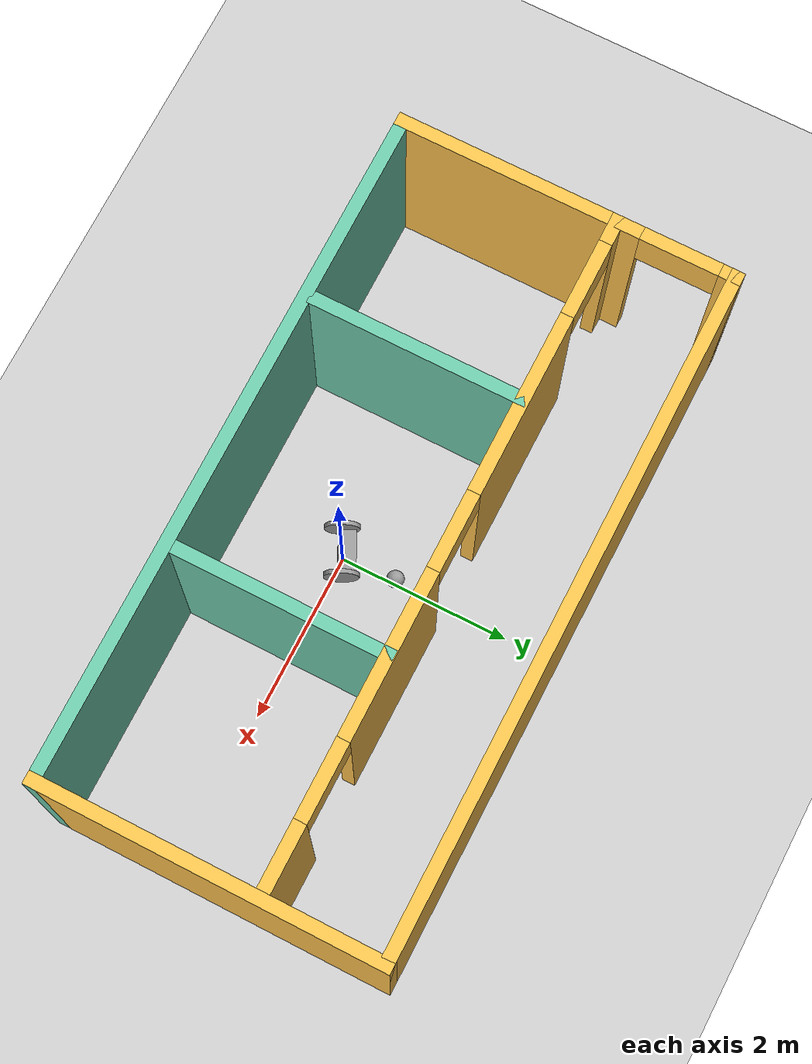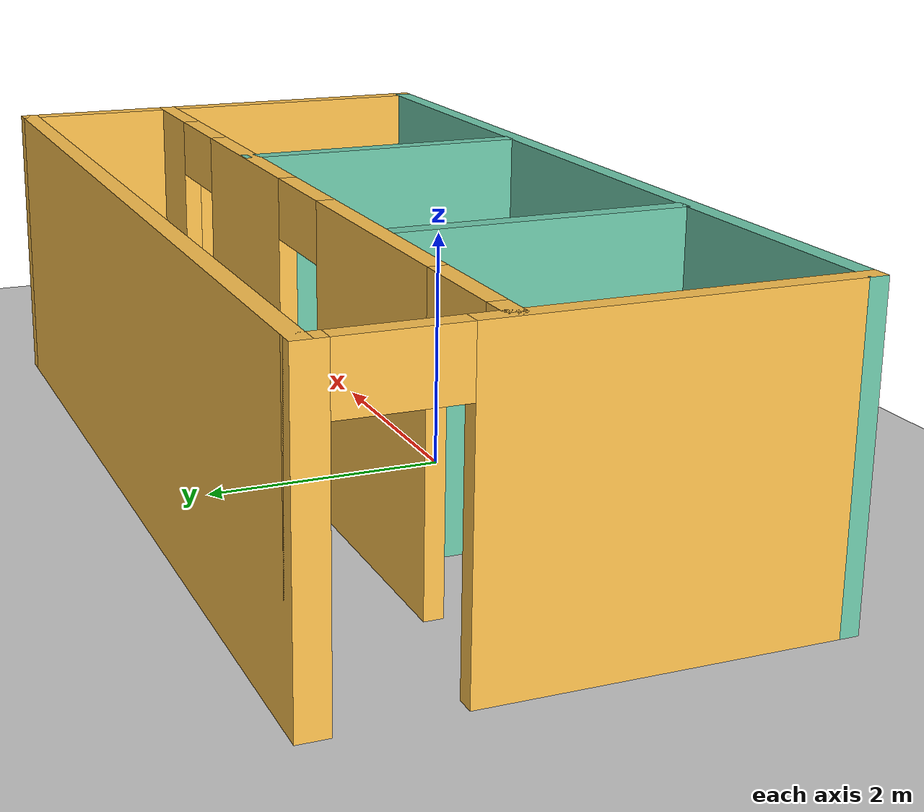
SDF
<sdf version="1.6">
 <world name="default">
  <light name="sun" type="directional">
   <pose>0 0 10 0 -0 0</pose>
   <diffuse>0.8 0.8 0.8 1</diffuse>
   <specular>0.2 0.2 0.2 1</specular>
   <attenuation>
    <range>1000</range>
    <constant>0.9</constant>
    <linear>0.01</linear>
    <quadratic>0.001</quadratic>
   </attenuation>
   <direction>-0.5 0.1 -0.9</direction>
  </light>
  <model name="ground_plane">
   <static>1</static>
   <link name="link">
    <collision name="collision">
     <geometry><plane><normal>0 0 1</normal><size>100 100</size></plane></geometry>
     <surface><friction><ode><mu>100</mu><mu2>50</mu2></ode></friction></surface>
    </collision>
    <visual name="visual">
     <cast_shadows>0</cast_shadows>
     <geometry><plane><normal>0 0 1</normal><size>100 100</size></plane></geometry>
     <material>
      <script><uri>file://media/materials/scripts/gazebo.material</uri><name>Gazebo/Grey</name></script>
     </material>
    </visual>
   </link>
  </model>
  <gravity>0 0 -9.8</gravity>
  <magnetic_field>6e-06 2.3e-05 -4.2e-05</magnetic_field>
  <atmosphere type="adiabatic"/>
  <physics name="default_physics" default="0" type="ode">
   <max_step_size>0.001</max_step_size>
   <real_time_factor>1</real_time_factor>
   <real_time_update_rate>1000</real_time_update_rate>
  </physics>
  <scene><ambient>0.4 0.4 0.4 1</ambient><background>0.7 0.7 0.7 1</background><shadows>1</shadows></scene>
  <spherical_coordinates>
   <surface_model>EARTH_WGS84</surface_model>
   <latitude_deg>0</latitude_deg>
   <longitude_deg>0</longitude_deg>
   <elevation>0</elevation>
   <heading_deg>0</heading_deg>
  </spherical_coordinates>
  <model name="building">
   <pose>-0.007996 0.64303 0 0 -0 0</pose>
   <link name="Wall_12">
    <collision name="Wall_12_Collision">
     <geometry><box><size>8 0.15 2.5</size></box></geometry>
     <pose>0 0 1.25 0 -0 0</pose>
    </collision>
    <visual name="Wall_12_Visual">
     <pose>0 0 1.25 0 -0 0</pose>
     <geometry><box><size>8 0.15 2.5</size></box></geometry>
     <material>
      <script><uri>file://media/materials/scripts/gazebo.material</uri><name>Gazebo/Grey</name></script>
      <ambient>1 0.764706 0.305882 1</ambient>
     </material>
     <meta><layer>0</layer></meta>
    </visual>
    <pose>0 1.925 0 0 -0 0</pose>
   </link>
   <link name="Wall_13">
    <collision name="Wall_13_Collision">
     <geometry><box><size>4 0.15 2.5</size></box></geometry>
     <pose>0 0 1.25 0 -0 0</pose>
    </collision>
    <visual name="Wall_13_Visual">
     <pose>0 0 1.25 0 -0 0</pose>
     <geometry><box><size>4 0.15 2.5</size></box></geometry>
     <material>
      <script><uri>file://media/materials/scripts/gazebo.material</uri><name>Gazebo/Grey</name></script>
      <ambient>1 0.764706 0.305882 1</ambient>
     </material>
     <meta><layer>0</layer></meta>
    </visual>
    <pose>3.925 0 0 0 0 -1.5708</pose>
   </link>
   <link name="Wall_14">
    <collision name="Wall_14_Collision">
     <geometry><box><size>8 0.15 2.5</size></box></geometry>
     <pose>0 0 1.25 0 -0 0</pose>
    </collision>
    <visual name="Wall_14_Visual">
     <pose>0 0 1.25 0 -0 0</pose>
     <geometry><box><size>8 0.15 2.5</size></box></geometry>
     <material>
      <script><uri>file://media/materials/scripts/gazebo.material</uri><name>Gazebo/Grey</name></script>
      <ambient>0.435294 0.796078 0.67451 1</ambient>
     </material>
     <meta><layer>0</layer></meta>
    </visual>
    <pose>0 -1.925 0 0 -0 3.14159</pose>
   </link>
   <link name="Wall_15">
    <pose>-3.925 0 0 0 -0 1.5708</pose>
    <visual name="Wall_15_Visual_0">
     <pose>-0.5725 0 1.25 0 -0 0</pose>
     <geometry><box><size>2.855 0.15 2.5</size></box></geometry>
     <material>
      <script><uri>file://media/materials/scripts/gazebo.material</uri><name>Gazebo/Grey</name></script>
      <ambient>1 0.764706 0.305882 1</ambient>
     </material>
     <meta><layer>0</layer></meta>
    </visual>
    <collision name="Wall_15_Collision_0">
     <geometry><box><size>2.855 0.15 2.5</size></box></geometry>
     <pose>-0.5725 0 1.25 0 -0 0</pose>
    </collision>
    <visual name="Wall_15_Visual_1">
     <pose>1.8775 0 1.25 0 -0 0</pose>
     <geometry><box><size>0.245 0.15 2.5</size></box></geometry>
     <material>
      <script><uri>file://media/materials/scripts/gazebo.material</uri><name>Gazebo/Grey</name></script>
      <ambient>1 0.764706 0.305882 1</ambient>
     </material>
     <meta><layer>0</layer></meta>
    </visual>
    <collision name="Wall_15_Collision_1">
     <geometry><box><size>0.245 0.15 2.5</size></box></geometry>
     <pose>1.8775 0 1.25 0 -0 0</pose>
    </collision>
    <visual name="Wall_15_Visual_2">
     <pose>1.305 0 2.25 0 -0 0</pose>
     <geometry><box><size>0.9 0.15 0.5</size></box></geometry>
     <material>
      <script><uri>file://media/materials/scripts/gazebo.material</uri><name>Gazebo/Grey</name></script>
      <ambient>1 0.764706 0.305882 1</ambient>
     </material>
     <meta><layer>0</layer></meta>
    </visual>
    <collision name="Wall_15_Collision_2">
     <geometry><box><size>0.9 0.15 0.5</size></box></geometry>
     <pose>1.305 0 2.25 0 -0 0</pose>
    </collision>
   </link>
   <link name="Wall_19">
    <pose>0 0.565 0 0 -0 0</pose>
    <visual name="Wall_19_Visual_0">
     <pose>-3.8275 0 1.25 0 -0 0</pose>
     <geometry><box><size>0.345 0.15 2.5</size></box></geometry>
     <material>
      <script><uri>file://media/materials/scripts/gazebo.material</uri><name>Gazebo/Grey</name></script>
      <ambient>1 0.764706 0.305882 1</ambient>
     </material>
     <meta><layer>0</layer></meta>
    </visual>
    <collision name="Wall_19_Collision_0">
     <geometry><box><size>0.345 0.15 2.5</size></box></geometry>
     <pose>-3.8275 0 1.25 0 -0 0</pose>
    </collision>
    <visual name="Wall_19_Visual_1">
     <pose>-1.69 0 1.25 0 -0 0</pose>
     <geometry><box><size>2.13 0.15 2.5</size></box></geometry>
     <material>
      <script><uri>file://media/materials/scripts/gazebo.material</uri><name>Gazebo/Grey</name></script>
      <ambient>1 0.764706 0.305882 1</ambient>
     </material>
     <meta><layer>0</layer></meta>
    </visual>
    <collision name="Wall_19_Collision_1">
     <geometry><box><size>2.13 0.15 2.5</size></box></geometry>
     <pose>-1.69 0 1.25 0 -0 0</pose>
    </collision>
    <visual name="Wall_19_Visual_2">
     <pose>1.235 0 1.25 0 -0 0</pose>
     <geometry><box><size>1.92 0.15 2.5</size></box></geometry>
     <material>
      <script><uri>file://media/materials/scripts/gazebo.material</uri><name>Gazebo/Grey</name></script>
      <ambient>1 0.764706 0.305882 1</ambient>
     </material>
     <meta><layer>0</layer></meta>
    </visual>
    <collision name="Wall_19_Collision_2">
     <geometry><box><size>1.92 0.15 2.5</size></box></geometry>
     <pose>1.235 0 1.25 0 -0 0</pose>
    </collision>
    <visual name="Wall_19_Visual_3">
     <pose>3.5475 0 1.25 0 -0 0</pose>
     <geometry><box><size>0.905 0.15 2.5</size></box></geometry>
     <material>
      <script><uri>file://media/materials/scripts/gazebo.material</uri><name>Gazebo/Grey</name></script>
      <ambient>1 0.764706 0.305882 1</ambient>
     </material>
     <meta><layer>0</layer></meta>
    </visual>
    <collision name="Wall_19_Collision_3">
     <geometry><box><size>0.905 0.15 2.5</size></box></geometry>
     <pose>3.5475 0 1.25 0 -0 0</pose>
    </collision>
    <visual name="Wall_19_Visual_4">
     <pose>-3.205 0 2.25 0 -0 0</pose>
     <geometry><box><size>0.9 0.15 0.5</size></box></geometry>
     <material>
      <script><uri>file://media/materials/scripts/gazebo.material</uri><name>Gazebo/Grey</name></script>
      <ambient>1 0.764706 0.305882 1</ambient>
     </material>
     <meta><layer>0</layer></meta>
    </visual>
    <collision name="Wall_19_Collision_4">
     <geometry><box><size>0.9 0.15 0.5</size></box></geometry>
     <pose>-3.205 0 2.25 0 -0 0</pose>
    </collision>
    <visual name="Wall_19_Visual_5">
     <pose>-0.175 0 2.25 0 -0 0</pose>
     <geometry><box><size>0.9 0.15 0.5</size></box></geometry>
     <material>
      <script><uri>file://media/materials/scripts/gazebo.material</uri><name>Gazebo/Grey</name></script>
      <ambient>1 0.764706 0.305882 1</ambient>
     </material>
     <meta><layer>0</layer></meta>
    </visual>
    <collision name="Wall_19_Collision_5">
     <geometry><box><size>0.9 0.15 0.5</size></box></geometry>
     <pose>-0.175 0 2.25 0 -0 0</pose>
    </collision>
    <visual name="Wall_19_Visual_6">
     <pose>2.645 0 2.25 0 -0 0</pose>
     <geometry><box><size>0.9 0.15 0.5</size></box></geometry>
     <material>
      <script><uri>file://media/materials/scripts/gazebo.material</uri><name>Gazebo/Grey</name></script>
      <ambient>1 0.764706 0.305882 1</ambient>
     </material>
     <meta><layer>0</layer></meta>
    </visual>
    <collision name="Wall_19_Collision_6">
     <geometry><box><size>0.9 0.15 0.5</size></box></geometry>
     <pose>2.645 0 2.25 0 -0 0</pose>
    </collision>
   </link>
   <link name="Wall_21">
    <collision name="Wall_21_Collision">
     <geometry><box><size>2.5 0.15 2.5</size></box></geometry>
     <pose>0 0 1.25 0 -0 0</pose>
    </collision>
    <visual name="Wall_21_Visual">
     <pose>0 0 1.25 0 -0 0</pose>
     <geometry><box><size>2.5 0.15 2.5</size></box></geometry>
     <material>
      <script><uri>file://media/materials/scripts/gazebo.material</uri><name>Gazebo/Grey</name></script>
      <ambient>0.435294 0.796078 0.67451 1</ambient>
     </material>
     <meta><layer>0</layer></meta>
    </visual>
    <pose>-1.735 -0.63 0 0 0 -1.5708</pose>
   </link>
   <link name="Wall_23">
    <collision name="Wall_23_Collision">
     <geometry><box><size>2.5 0.15 2.5</size></box></geometry>
     <pose>0 0 1.25 0 -0 0</pose>
    </collision>
    <visual name="Wall_23_Visual">
     <pose>0 0 1.25 0 -0 0</pose>
     <geometry><box><size>2.5 0.15 2.5</size></box></geometry>
     <material>
      <script><uri>file://media/materials/scripts/gazebo.material</uri><name>Gazebo/Grey</name></script>
      <ambient>0.435294 0.796078 0.67451 1</ambient>
     </material>
     <meta><layer>0</layer></meta>
    </visual>
    <pose>1.245 -0.62 0 0 0 -1.5708</pose>
   </link>
   <static>1</static>
  </model>
  <model name="robot">
   <link name="link_0">
    <pose>-0.167054 -0.564513 0.170002 0 -0 0</pose>
    <inertial>
     <mass>1</mass>
     <inertia>
      <ixx>0.166667</ixx>
      <ixy>0</ixy>
      <ixz>0</ixz>
      <iyy>0.166667</iyy>
      <iyz>0</iyz>
      <izz>0.166667</izz>
     </inertia>
    </inertial>
    <visual name="visual">
     <geometry><box><size>0.5 0.2 0.1</size></box></geometry>
     <material>
      <lighting>1</lighting>
      <script><uri>file://media/materials/scripts/gazebo.material</uri><name>Gazebo/Grey</name></script>
      <shader type="pixel"><normal_map>__default__</normal_map></shader>
      <ambient>0.3 0.3 0.3 1</ambient>
      <diffuse>0.7 0.7 0.7 1</diffuse>
      <specular>0.01 0.01 0.01 1</specular>
      <emissive>0 0 0 1</emissive>
     </material>
    </visual>
    <collision name="collision">
     <geometry><box><size>0.5 0.2 0.1</size></box></geometry>
     <surface>
      <friction>
       <ode><mu>1</mu><mu2>1</mu2><fdir1>0 0 0</fdir1><slip1>0</slip1><slip2>0</slip2></ode>
       <torsional>
        <coefficient>1</coefficient>
        <patch_radius>0</patch_radius>
        <surface_radius>0</surface_radius>
        <use_patch_radius>1</use_patch_radius>
        <ode><slip>0</slip></ode>
       </torsional>
      </friction>
      <bounce><restitution_coefficient>0</restitution_coefficient><threshold>1e+06</threshold></bounce>
      <contact>
       <collide_without_contact>0</collide_without_contact>
       <collide_without_contact_bitmask>1</collide_without_contact_bitmask>
       <collide_bitmask>1</collide_bitmask>
       <ode>
        <soft_cfm>0</soft_cfm>
        <soft_erp>0.2</soft_erp>
        <kp>1e+13</kp>
        <kd>1</kd>
        <max_vel>0.01</max_vel>
        <min_depth>0</min_depth>
       </ode>
       <bullet>
        <split_impulse>1</split_impulse>
        <split_impulse_penetration_threshold>-0.01</split_impulse_penetration_threshold>
        <soft_cfm>0</soft_cfm>
        <soft_erp>0.2</soft_erp>
        <kp>1e+13</kp>
        <kd>1</kd>
       </bullet>
      </contact>
     </surface>
    </collision>
   </link>
   <link name="link_1">
    <pose>0.107966 -0.624513 0.214996 0 1.5707 0</pose>
    <inertial>
     <mass>1</mass>
     <inertia><ixx>0.145833</ixx><ixy>0</ixy><ixz>0</ixz><iyy>0.145833</iyy><iyz>0</iyz><izz>0.125</izz></inertia>
    </inertial>
    <visual name="visual">
     <geometry><cylinder><radius>0.2</radius><length>0.05</length></cylinder></geometry>
     <material>
      <lighting>1</lighting>
      <script><uri>file://media/materials/scripts/gazebo.material</uri><name>Gazebo/Grey</name></script>
      <shader type="pixel"><normal_map>__default__</normal_map></shader>
      <ambient>0.3 0.3 0.3 1</ambient>
      <diffuse>0.7 0.7 0.7 1</diffuse>
      <specular>0.01 0.01 0.01 1</specular>
      <emissive>0 0 0 1</emissive>
     </material>
    </visual>
    <collision name="collision">
     <geometry><cylinder><radius>0.2</radius><length>0.05</length></cylinder></geometry>
     <surface>
      <friction>
       <ode><mu>1</mu><mu2>1</mu2><fdir1>0 0 0</fdir1><slip1>0</slip1><slip2>0</slip2></ode>
       <torsional>
        <coefficient>1</coefficient>
        <patch_radius>0</patch_radius>
        <surface_radius>0</surface_radius>
        <use_patch_radius>1</use_patch_radius>
        <ode><slip>0</slip></ode>
       </torsional>
      </friction>
      <bounce><restitution_coefficient>0</restitution_coefficient><threshold>1e+06</threshold></bounce>
      <contact>
       <collide_without_contact>0</collide_without_contact>
       <collide_without_contact_bitmask>1</collide_without_contact_bitmask>
       <collide_bitmask>1</collide_bitmask>
       <ode>
        <soft_cfm>0</soft_cfm>
        <soft_erp>0.2</soft_erp>
        <kp>1e+13</kp>
        <kd>1</kd>
        <max_vel>0.01</max_vel>
        <min_depth>0</min_depth>
       </ode>
       <bullet>
        <split_impulse>1</split_impulse>
        <split_impulse_penetration_threshold>-0.01</split_impulse_penetration_threshold>
        <soft_cfm>0</soft_cfm>
        <soft_erp>0.2</soft_erp>
        <kp>1e+13</kp>
        <kd>1</kd>
       </bullet>
      </contact>
     </surface>
    </collision>
   </link>
   <link name="link_1_clone">
    <pose>-0.442073 -0.624513 0.215002 0 1.5707 0</pose>
    <inertial>
     <mass>1</mass>
     <inertia><ixx>0.145833</ixx><ixy>0</ixy><ixz>0</ixz><iyy>0.145833</iyy><iyz>0</iyz><izz>0.125</izz></inertia>
    </inertial>
    <visual name="visual">
     <geometry><cylinder><radius>0.2</radius><length>0.05</length></cylinder></geometry>
     <material>
      <lighting>1</lighting>
      <script><uri>file://media/materials/scripts/gazebo.material</uri><name>Gazebo/Grey</name></script>
      <shader type="pixel"><normal_map>__default__</normal_map></shader>
      <ambient>0.3 0.3 0.3 1</ambient>
      <diffuse>0.7 0.7 0.7 1</diffuse>
      <specular>0.01 0.01 0.01 1</specular>
      <emissive>0 0 0 1</emissive>
     </material>
    </visual>
    <collision name="collision">
     <geometry><cylinder><radius>0.2</radius><length>0.05</length></cylinder></geometry>
     <surface>
      <friction>
       <ode><mu>1</mu><mu2>1</mu2><fdir1>0 0 0</fdir1><slip1>0</slip1><slip2>0</slip2></ode>
       <torsional>
        <coefficient>1</coefficient>
        <patch_radius>0</patch_radius>
        <surface_radius>0</surface_radius>
        <use_patch_radius>1</use_patch_radius>
        <ode><slip>0</slip></ode>
       </torsional>
      </friction>
      <bounce><restitution_coefficient>0</restitution_coefficient><threshold>1e+06</threshold></bounce>
      <contact>
       <collide_without_contact>0</collide_without_contact>
       <collide_without_contact_bitmask>1</collide_without_contact_bitmask>
       <collide_bitmask>1</collide_bitmask>
       <ode>
        <soft_cfm>0</soft_cfm>
        <soft_erp>0.2</soft_erp>
        <kp>1e+13</kp>
        <kd>1</kd>
        <max_vel>0.01</max_vel>
        <min_depth>0</min_depth>
       </ode>
       <bullet>
        <split_impulse>1</split_impulse>
        <split_impulse_penetration_threshold>-0.01</split_impulse_penetration_threshold>
        <soft_cfm>0</soft_cfm>
        <soft_erp>0.2</soft_erp>
        <kp>1e+13</kp>
        <kd>1</kd>
       </bullet>
      </contact>
     </surface>
    </collision>
   </link>
   <joint name="link_0_JOINT_1" type="revolute">
    <parent>link_0</parent>
    <child>link_1</child>
    <axis>
     <xyz>0 0 1</xyz>
     <use_parent_model_frame>0</use_parent_model_frame>
     <limit>
      <lower>-1.79769e+308</lower>
      <upper>1.79769e+308</upper>
      <effort>-1</effort>
      <velocity>-1</velocity>
     </limit>
     <dynamics>
      <spring_reference>0</spring_reference>
      <spring_stiffness>0</spring_stiffness>
      <damping>0</damping>
     </dynamics>
    </axis>
    <physics>
     <ode><limit><cfm>0</cfm><erp>0.2</erp></limit><suspension><cfm>0</cfm><erp>0.2</erp></suspension></ode>
    </physics>
   </joint>
   <joint name="link_0_JOINT_2" type="revolute">
    <parent>link_0</parent>
    <child>link_1_clone</child>
    <axis>
     <xyz>0 0 1</xyz>
     <use_parent_model_frame>0</use_parent_model_frame>
     <limit>
      <lower>-1.79769e+308</lower>
      <upper>1.79769e+308</upper>
      <effort>-1</effort>
      <velocity>-1</velocity>
     </limit>
     <dynamics>
      <spring_reference>0</spring_reference>
      <spring_stiffness>0</spring_stiffness>
      <damping>0</damping>
     </dynamics>
    </axis>
    <physics>
     <ode><limit><cfm>0</cfm><erp>0.2</erp></limit><suspension><cfm>0</cfm><erp>0.2</erp></suspension></ode>
    </physics>
   </joint>
   <static>0</static>
   <pose>-0.141113 0.58302 -0.085525 -0.115486 -1.1e-05 0.458732</pose>
  </model>
  <model name="my_ball">
   <link name="link_0">
    <inertial>
     <mass>1</mass>
     <inertia><ixx>0.1</ixx><ixy>0</ixy><ixz>0</ixz><iyy>0.1</iyy><iyz>0</iyz><izz>0.1</izz></inertia>
    </inertial>
    <visual name="visual">
     <geometry><sphere><radius>0.1</radius></sphere></geometry>
     <material>
      <lighting>1</lighting>
      <script><uri>file://media/materials/scripts/gazebo.material</uri><name>Gazebo/Grey</name></script>
      <shader type="pixel"><normal_map>__default__</normal_map></shader>
      <ambient>1 1 1 1</ambient>
      <diffuse>1 1 1 1</diffuse>
      <specular>1 1 1 1</specular>
      <emissive>1 1 1 1</emissive>
     </material>
    </visual>
    <collision name="collision">
     <geometry><sphere><radius>0.1</radius></sphere></geometry>
     <surface>
      <friction>
       <ode><mu>1</mu><mu2>1</mu2><fdir1>0 0 0</fdir1><slip1>0</slip1><slip2>0</slip2></ode>
       <torsional>
        <coefficient>1</coefficient>
        <patch_radius>0</patch_radius>
        <surface_radius>0</surface_radius>
        <use_patch_radius>1</use_patch_radius>
        <ode><slip>0</slip></ode>
       </torsional>
      </friction>
      <bounce><restitution_coefficient>0</restitution_coefficient><threshold>1e+06</threshold></bounce>
      <contact>
       <collide_without_contact>0</collide_without_contact>
       <collide_without_contact_bitmask>1</collide_without_contact_bitmask>
       <collide_bitmask>1</collide_bitmask>
       <ode>
        <soft_cfm>0</soft_cfm>
        <soft_erp>0.2</soft_erp>
        <kp>1e+13</kp>
        <kd>1</kd>
        <max_vel>0.01</max_vel>
        <min_depth>0</min_depth>
       </ode>
       <bullet>
        <split_impulse>1</split_impulse>
        <split_impulse_penetration_threshold>-0.01</split_impulse_penetration_threshold>
        <soft_cfm>0</soft_cfm>
        <soft_erp>0.2</soft_erp>
        <kp>1e+13</kp>
        <kd>1</kd>
       </bullet>
      </contact>
     </surface>
    </collision>
   </link>
   <static>0</static>
   <pose>-0.037961 0.631126 0.1 0 -0 0</pose>
  </model>
 </world>
</sdf>
